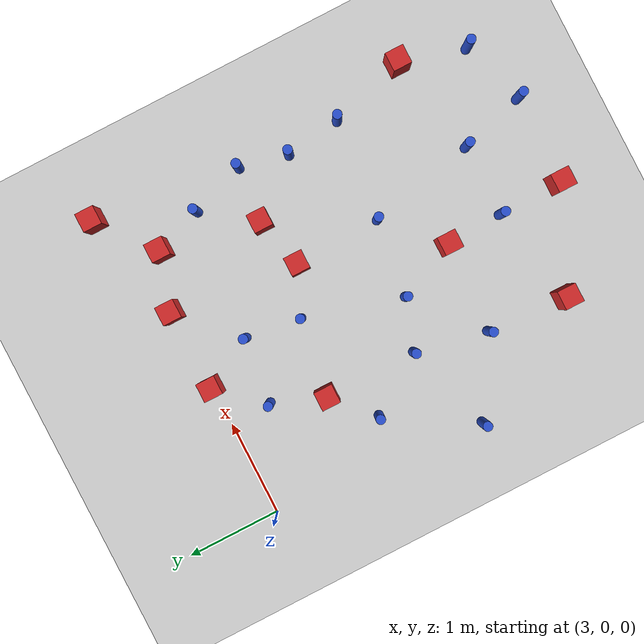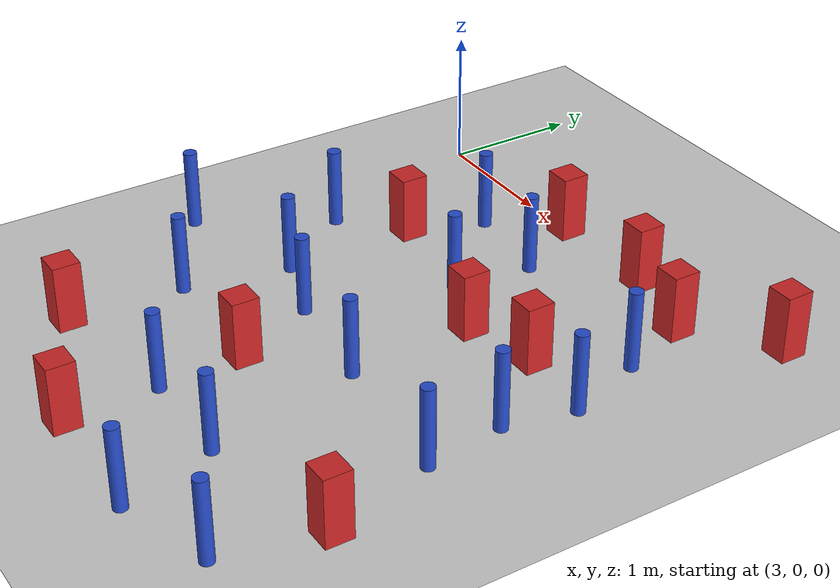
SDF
<sdf version="1.6">
 <world name="default">
  <model name="ground_plane">
   <static>1</static>
   <link name="link">
    <collision name="collision">
     <geometry><plane><normal>0 0 1</normal><size>100 100</size></plane></geometry>
     <surface><friction><ode><mu>100</mu><mu2>50</mu2></ode></friction></surface>
    </collision>
    <visual name="visual">
     <cast_shadows>0</cast_shadows>
     <geometry><plane><normal>0 0 1</normal><size>100 100</size></plane></geometry>
     <material>
      <ambient>1.0 1.0 1.0 1.0</ambient>
      <diffuse>0.8 0.8 0.8 1.0</diffuse>
      <specular>0.01 0.01 0.01 1.000000</specular>
     </material>
    </visual>
   </link>
  </model>
  <model name="square_post_obstacle0">
   <static>true</static>
   <pose>5.15000023231 -1.34860133683 8.22691968438e-08 7.2212513382e-06 -7.54495500217e-07 2.29674213826e-05</pose>
   <link name="link">
    <pose>0 0 0.25 0 -0 0</pose>
    <inertial>
     <mass>100</mass>
     <inertia>
      <ixx>0.166667</ixx>
      <ixy>0</ixy>
      <ixz>0</ixz>
      <iyy>0.166667</iyy>
      <iyz>0</iyz>
      <izz>0.166667</izz>
     </inertia>
    </inertial>
    <collision name="collision"><geometry><box><size>.2 .2 .5</size></box></geometry></collision>
    <visual name="visual">
     <geometry><box><size>.2 .2 .5</size></box></geometry>
     <material>
      <script><name>Gazebo/Red</name><uri>file://media/materials/scripts/gazebo.material</uri></script>
     </material>
    </visual>
   </link>
  </model>
  <model name="pole_obstacle0">
   <static>true</static>
   <pose>6.25939533136 -2.37629695557 2.88873142074e-08 -9.90536690245e-09 4.6021994898e-07 -1.20965994966e-07</pose>
   <link name="link">
    <pose>0 0 0.3 0 -0 0</pose>
    <inertial>
     <mass>1</mass>
     <inertia><ixx>0.145833</ixx><ixy>0</ixy><ixz>0</ixz><iyy>0.145833</iyy><iyz>0</iyz><izz>0.125</izz></inertia>
    </inertial>
    <collision name="collision">
     <geometry><cylinder><radius>0.05</radius><length>.6</length></cylinder></geometry>
    </collision>
    <visual name="visual">
     <geometry><cylinder><radius>0.05</radius><length>.6</length></cylinder></geometry>
     <material>
      <script><name>Gazebo/Blue</name><uri>file://media/materials/scripts/gazebo.material</uri></script>
     </material>
    </visual>
   </link>
  </model>
  <model name="square_post_obstacle17">
   <static>true</static>
   <pose>4.66868153729 -4.08071297045 8.22691968438e-08 7.2212513382e-06 -7.54495500217e-07 2.29674213826e-05</pose>
   <link name="link">
    <pose>0 0 0.25 0 -0 0</pose>
    <inertial>
     <mass>100</mass>
     <inertia>
      <ixx>0.166667</ixx>
      <ixy>0</ixy>
      <ixz>0</ixz>
      <iyy>0.166667</iyy>
      <iyz>0</iyz>
      <izz>0.166667</izz>
     </inertia>
    </inertial>
    <collision name="collision"><geometry><box><size>.2 .2 .5</size></box></geometry></collision>
    <visual name="visual">
     <geometry><box><size>.2 .2 .5</size></box></geometry>
     <material>
      <script><name>Gazebo/Red</name><uri>file://media/materials/scripts/gazebo.material</uri></script>
     </material>
    </visual>
   </link>
  </model>
  <model name="square_post_obstacle45">
   <static>true</static>
   <pose>5.90532125554 -0.179946224838 8.22691968438e-08 7.2212513382e-06 -7.54495500217e-07 2.29674213826e-05</pose>
   <link name="link">
    <pose>0 0 0.25 0 -0 0</pose>
    <inertial>
     <mass>100</mass>
     <inertia>
      <ixx>0.166667</ixx>
      <ixy>0</ixy>
      <ixz>0</ixz>
      <iyy>0.166667</iyy>
      <iyz>0</iyz>
      <izz>0.166667</izz>
     </inertia>
    </inertial>
    <collision name="collision"><geometry><box><size>.2 .2 .5</size></box></geometry></collision>
    <visual name="visual">
     <geometry><box><size>.2 .2 .5</size></box></geometry>
     <material>
      <script><name>Gazebo/Red</name><uri>file://media/materials/scripts/gazebo.material</uri></script>
     </material>
    </visual>
   </link>
  </model>
  <model name="pole_obstacle49">
   <static>true</static>
   <pose>6.17570449695 -1.78283865451 2.88873142074e-08 -9.90536689445e-09 4.60219948999e-07 -1.20965994956e-07</pose>
   <link name="link">
    <pose>0 0 0.3 0 -0 0</pose>
    <inertial>
     <mass>1</mass>
     <inertia><ixx>0.145833</ixx><ixy>0</ixy><ixz>0</ixz><iyy>0.145833</iyy><iyz>0</iyz><izz>0.125</izz></inertia>
    </inertial>
    <collision name="collision">
     <geometry><cylinder><radius>0.05</radius><length>.6</length></cylinder></geometry>
    </collision>
    <visual name="visual">
     <geometry><cylinder><radius>0.05</radius><length>.6</length></cylinder></geometry>
     <material>
      <script><name>Gazebo/Blue</name><uri>file://media/materials/scripts/gazebo.material</uri></script>
     </material>
    </visual>
   </link>
  </model>
  <model name="square_post_obstacle53">
   <static>true</static>
   <pose>5.69838929538 -1.21689586837 8.22691968438e-08 7.2212513382e-06 -7.54495500217e-07 2.29674213826e-05</pose>
   <link name="link">
    <pose>0 0 0.25 0 -0 0</pose>
    <inertial>
     <mass>100</mass>
     <inertia>
      <ixx>0.166667</ixx>
      <ixy>0</ixy>
      <ixz>0</ixz>
      <iyy>0.166667</iyy>
      <iyz>0</iyz>
      <izz>0.166667</izz>
     </inertia>
    </inertial>
    <collision name="collision"><geometry><box><size>.2 .2 .5</size></box></geometry></collision>
    <visual name="visual">
     <geometry><box><size>.2 .2 .5</size></box></geometry>
     <material>
      <script><name>Gazebo/Red</name><uri>file://media/materials/scripts/gazebo.material</uri></script>
     </material>
    </visual>
   </link>
  </model>
  <model name="pole_obstacle57">
   <static>true</static>
   <pose>3.81146176893 -1.98575136678 2.88873142074e-08 -9.90536689589e-09 4.60219948995e-07 -1.20965994957e-07</pose>
   <link name="link">
    <pose>0 0 0.3 0 -0 0</pose>
    <inertial>
     <mass>1</mass>
     <inertia><ixx>0.145833</ixx><ixy>0</ixy><ixz>0</ixz><iyy>0.145833</iyy><iyz>0</iyz><izz>0.125</izz></inertia>
    </inertial>
    <collision name="collision">
     <geometry><cylinder><radius>0.05</radius><length>.6</length></cylinder></geometry>
    </collision>
    <visual name="visual">
     <geometry><cylinder><radius>0.05</radius><length>.6</length></cylinder></geometry>
     <material>
      <script><name>Gazebo/Blue</name><uri>file://media/materials/scripts/gazebo.material</uri></script>
     </material>
    </visual>
   </link>
  </model>
  <model name="pole_obstacle61">
   <static>true</static>
   <pose>5.61702403845 -4.10796681776 2.88873142074e-08 -9.90536690842e-09 4.60219948965e-07 -1.20965994976e-07</pose>
   <link name="link">
    <pose>0 0 0.3 0 -0 0</pose>
    <inertial>
     <mass>1</mass>
     <inertia><ixx>0.145833</ixx><ixy>0</ixy><ixz>0</ixz><iyy>0.145833</iyy><iyz>0</iyz><izz>0.125</izz></inertia>
    </inertial>
    <collision name="collision">
     <geometry><cylinder><radius>0.05</radius><length>.6</length></cylinder></geometry>
    </collision>
    <visual name="visual">
     <geometry><cylinder><radius>0.05</radius><length>.6</length></cylinder></geometry>
     <material>
      <script><name>Gazebo/Blue</name><uri>file://media/materials/scripts/gazebo.material</uri></script>
     </material>
    </visual>
   </link>
  </model>
  <model name="pole_obstacle63">
   <static>true</static>
   <pose>3.39751263166 -1.37505485379 2.88873142074e-08 -9.90536689395e-09 4.60219949e-07 -1.20965994953e-07</pose>
   <link name="link">
    <pose>0 0 0.3 0 -0 0</pose>
    <inertial>
     <mass>1</mass>
     <inertia><ixx>0.145833</ixx><ixy>0</ixy><ixz>0</ixz><iyy>0.145833</iyy><iyz>0</iyz><izz>0.125</izz></inertia>
    </inertial>
    <collision name="collision">
     <geometry><cylinder><radius>0.05</radius><length>.6</length></cylinder></geometry>
    </collision>
    <visual name="visual">
     <geometry><cylinder><radius>0.05</radius><length>.6</length></cylinder></geometry>
     <material>
      <script><name>Gazebo/Blue</name><uri>file://media/materials/scripts/gazebo.material</uri></script>
     </material>
    </visual>
   </link>
  </model>
  <model name="pole_obstacle67">
   <static>true</static>
   <pose>4.64180337466 -1.12756635979 2.88873142074e-08 -9.90536689445e-09 4.60219948999e-07 -1.20965994956e-07</pose>
   <link name="link">
    <pose>0 0 0.3 0 -0 0</pose>
    <inertial>
     <mass>1</mass>
     <inertia><ixx>0.145833</ixx><ixy>0</ixy><ixz>0</ixz><iyy>0.145833</iyy><iyz>0</iyz><izz>0.125</izz></inertia>
    </inertial>
    <collision name="collision">
     <geometry><cylinder><radius>0.05</radius><length>.6</length></cylinder></geometry>
    </collision>
    <visual name="visual">
     <geometry><cylinder><radius>0.05</radius><length>.6</length></cylinder></geometry>
     <material>
      <script><name>Gazebo/Blue</name><uri>file://media/materials/scripts/gazebo.material</uri></script>
     </material>
    </visual>
   </link>
  </model>
  <model name="pole_obstacle70">
   <static>true</static>
   <pose>5.17681594677 -2.2753764297 2.88873142074e-08 -9.90536690245e-09 4.6021994898e-07 -1.20965994966e-07</pose>
   <link name="link">
    <pose>0 0 0.3 0 -0 0</pose>
    <inertial>
     <mass>1</mass>
     <inertia><ixx>0.145833</ixx><ixy>0</ixy><ixz>0</ixz><iyy>0.145833</iyy><iyz>0</iyz><izz>0.125</izz></inertia>
    </inertial>
    <collision name="collision">
     <geometry><cylinder><radius>0.05</radius><length>.6</length></cylinder></geometry>
    </collision>
    <visual name="visual">
     <geometry><cylinder><radius>0.05</radius><length>.6</length></cylinder></geometry>
     <material>
      <script><name>Gazebo/Blue</name><uri>file://media/materials/scripts/gazebo.material</uri></script>
     </material>
    </visual>
   </link>
  </model>
  <model name="pole_obstacle72">
   <static>true</static>
   <pose>5.41871702903 -3.41380591752 2.88873142074e-08 -9.90536690245e-09 4.6021994898e-07 -1.20965994966e-07</pose>
   <link name="link">
    <pose>0 0 0.3 0 -0 0</pose>
    <inertial>
     <mass>1</mass>
     <inertia><ixx>0.145833</ixx><ixy>0</ixy><ixz>0</ixz><iyy>0.145833</iyy><iyz>0</iyz><izz>0.125</izz></inertia>
    </inertial>
    <collision name="collision">
     <geometry><cylinder><radius>0.05</radius><length>.6</length></cylinder></geometry>
    </collision>
    <visual name="visual">
     <geometry><cylinder><radius>0.05</radius><length>.6</length></cylinder></geometry>
     <material>
      <script><name>Gazebo/Blue</name><uri>file://media/materials/scripts/gazebo.material</uri></script>
     </material>
    </visual>
   </link>
  </model>
  <model name="pole_obstacle94">
   <static>true</static>
   <pose>6.29122546616 -1.26858974739 2.88873142074e-08 -9.90536689445e-09 4.60219948999e-07 -1.20965994956e-07</pose>
   <link name="link">
    <pose>0 0 0.3 0 -0 0</pose>
    <inertial>
     <mass>1</mass>
     <inertia><ixx>0.145833</ixx><ixy>0</ixy><ixz>0</ixz><iyy>0.145833</iyy><iyz>0</iyz><izz>0.125</izz></inertia>
    </inertial>
    <collision name="collision">
     <geometry><cylinder><radius>0.05</radius><length>.6</length></cylinder></geometry>
    </collision>
    <visual name="visual">
     <geometry><cylinder><radius>0.05</radius><length>.6</length></cylinder></geometry>
     <material>
      <script><name>Gazebo/Blue</name><uri>file://media/materials/scripts/gazebo.material</uri></script>
     </material>
    </visual>
   </link>
  </model>
  <model name="pole_obstacle101">
   <static>true</static>
   <pose>3.65120811873 -2.75701727651 2.88873142074e-08 -9.90536690232e-09 4.6021994898e-07 -1.20965994968e-07</pose>
   <link name="link">
    <pose>0 0 0.3 0 -0 0</pose>
    <inertial>
     <mass>1</mass>
     <inertia><ixx>0.145833</ixx><ixy>0</ixy><ixz>0</ixz><iyy>0.145833</iyy><iyz>0</iyz><izz>0.125</izz></inertia>
    </inertial>
    <collision name="collision">
     <geometry><cylinder><radius>0.05</radius><length>.6</length></cylinder></geometry>
    </collision>
    <visual name="visual">
     <geometry><cylinder><radius>0.05</radius><length>.6</length></cylinder></geometry>
     <material>
      <script><name>Gazebo/Blue</name><uri>file://media/materials/scripts/gazebo.material</uri></script>
     </material>
    </visual>
   </link>
  </model>
  <model name="pole_obstacle109">
   <static>true</static>
   <pose>4.02232846109 -0.450491445531 2.88873142074e-08 -9.90536689318e-09 4.60219949002e-07 -1.20965994954e-07</pose>
   <link name="link">
    <pose>0 0 0.3 0 -0 0</pose>
    <inertial>
     <mass>1</mass>
     <inertia><ixx>0.145833</ixx><ixy>0</ixy><ixz>0</ixz><iyy>0.145833</iyy><iyz>0</iyz><izz>0.125</izz></inertia>
    </inertial>
    <collision name="collision">
     <geometry><cylinder><radius>0.05</radius><length>.6</length></cylinder></geometry>
    </collision>
    <visual name="visual">
     <geometry><cylinder><radius>0.05</radius><length>.6</length></cylinder></geometry>
     <material>
      <script><name>Gazebo/Blue</name><uri>file://media/materials/scripts/gazebo.material</uri></script>
     </material>
    </visual>
   </link>
  </model>
  <model name="pole_obstacle119">
   <static>true</static>
   <pose>6.31004379209 -3.88591678296 2.88873142074e-08 -9.90536690245e-09 4.6021994898e-07 -1.20965994966e-07</pose>
   <link name="link">
    <pose>0 0 0.3 0 -0 0</pose>
    <inertial>
     <mass>1</mass>
     <inertia><ixx>0.145833</ixx><ixy>0</ixy><ixz>0</ixz><iyy>0.145833</iyy><iyz>0</iyz><izz>0.125</izz></inertia>
    </inertial>
    <collision name="collision">
     <geometry><cylinder><radius>0.05</radius><length>.6</length></cylinder></geometry>
    </collision>
    <visual name="visual">
     <geometry><cylinder><radius>0.05</radius><length>.6</length></cylinder></geometry>
     <material>
      <script><name>Gazebo/Blue</name><uri>file://media/materials/scripts/gazebo.material</uri></script>
     </material>
    </visual>
   </link>
  </model>
  <model name="pole_obstacle123">
   <static>true</static>
   <pose>6.09028594662 -0.686654510738 2.88873142074e-08 -9.90536689837e-09 4.60219948989e-07 -1.2096599496e-07</pose>
   <link name="link">
    <pose>0 0 0.3 0 -0 0</pose>
    <inertial>
     <mass>1</mass>
     <inertia><ixx>0.145833</ixx><ixy>0</ixy><ixz>0</ixz><iyy>0.145833</iyy><iyz>0</iyz><izz>0.125</izz></inertia>
    </inertial>
    <collision name="collision">
     <geometry><cylinder><radius>0.05</radius><length>.6</length></cylinder></geometry>
    </collision>
    <visual name="visual">
     <geometry><cylinder><radius>0.05</radius><length>.6</length></cylinder></geometry>
     <material>
      <script><name>Gazebo/Blue</name><uri>file://media/materials/scripts/gazebo.material</uri></script>
     </material>
    </visual>
   </link>
  </model>
  <model name="pole_obstacle128">
   <static>true</static>
   <pose>2.85326195724 -2.27970721354 2.88873142074e-08 -9.90536690232e-09 4.6021994898e-07 -1.20965994968e-07</pose>
   <link name="link">
    <pose>0 0 0.3 0 -0 0</pose>
    <inertial>
     <mass>1</mass>
     <inertia><ixx>0.145833</ixx><ixy>0</ixy><ixz>0</ixz><iyy>0.145833</iyy><iyz>0</iyz><izz>0.125</izz></inertia>
    </inertial>
    <collision name="collision">
     <geometry><cylinder><radius>0.05</radius><length>.6</length></cylinder></geometry>
    </collision>
    <visual name="visual">
     <geometry><cylinder><radius>0.05</radius><length>.6</length></cylinder></geometry>
     <material>
      <script><name>Gazebo/Blue</name><uri>file://media/materials/scripts/gazebo.material</uri></script>
     </material>
    </visual>
   </link>
  </model>
  <model name="square_post_obstacle118">
   <static>true</static>
   <pose>4.43737677165 -0.00359077023074 8.22691968438e-08 7.2212513382e-06 -7.54495500217e-07 2.29674213826e-05</pose>
   <link name="link">
    <pose>0 0 0.25 0 -0 0</pose>
    <inertial>
     <mass>100</mass>
     <inertia>
      <ixx>0.166667</ixx>
      <ixy>0</ixy>
      <ixz>0</ixz>
      <iyy>0.166667</iyy>
      <iyz>0</iyz>
      <izz>0.166667</izz>
     </inertia>
    </inertial>
    <collision name="collision"><geometry><box><size>.2 .2 .5</size></box></geometry></collision>
    <visual name="visual">
     <geometry><box><size>.2 .2 .5</size></box></geometry>
     <material>
      <script><name>Gazebo/Red</name><uri>file://media/materials/scripts/gazebo.material</uri></script>
     </material>
    </visual>
   </link>
  </model>
  <model name="pole_obstacle137">
   <static>true</static>
   <pose>4.34989120041 -2.17046273704 2.88873142074e-08 -9.90536690245e-09 4.6021994898e-07 -1.20965994966e-07</pose>
   <link name="link">
    <pose>0 0 0.3 0 -0 0</pose>
    <inertial>
     <mass>1</mass>
     <inertia><ixx>0.145833</ixx><ixy>0</ixy><ixz>0</ixz><iyy>0.145833</iyy><iyz>0</iyz><izz>0.125</izz></inertia>
    </inertial>
    <collision name="collision">
     <geometry><cylinder><radius>0.05</radius><length>.6</length></cylinder></geometry>
    </collision>
    <visual name="visual">
     <geometry><cylinder><radius>0.05</radius><length>.6</length></cylinder></geometry>
     <material>
      <script><name>Gazebo/Blue</name><uri>file://media/materials/scripts/gazebo.material</uri></script>
     </material>
    </visual>
   </link>
  </model>
  <model name="square_post_obstacle147">
   <static>true</static>
   <pose>3.8242705099 -1.00178346201 8.22691968438e-08 7.2212513382e-06 -7.54495500217e-07 2.29674213826e-05</pose>
   <link name="link">
    <pose>0 0 0.25 0 -0 0</pose>
    <inertial>
     <mass>100</mass>
     <inertia>
      <ixx>0.166667</ixx>
      <ixy>0</ixy>
      <ixz>0</ixz>
      <iyy>0.166667</iyy>
      <iyz>0</iyz>
      <izz>0.166667</izz>
     </inertia>
    </inertial>
    <collision name="collision"><geometry><box><size>.2 .2 .5</size></box></geometry></collision>
    <visual name="visual">
     <geometry><box><size>.2 .2 .5</size></box></geometry>
     <material>
      <script><name>Gazebo/Red</name><uri>file://media/materials/scripts/gazebo.material</uri></script>
     </material>
    </visual>
   </link>
  </model>
  <model name="square_post_obstacle161">
   <static>true</static>
   <pose>3.60519646206 -3.60557014948 8.22691968438e-08 7.2212513382e-06 -7.54495500217e-07 2.29674213826e-05</pose>
   <link name="link">
    <pose>0 0 0.25 0 -0 0</pose>
    <inertial>
     <mass>100</mass>
     <inertia>
      <ixx>0.166667</ixx>
      <ixy>0</ixy>
      <ixz>0</ixz>
      <iyy>0.166667</iyy>
      <iyz>0</iyz>
      <izz>0.166667</izz>
     </inertia>
    </inertial>
    <collision name="collision"><geometry><box><size>.2 .2 .5</size></box></geometry></collision>
    <visual name="visual">
     <geometry><box><size>.2 .2 .5</size></box></geometry>
     <material>
      <script><name>Gazebo/Red</name><uri>file://media/materials/scripts/gazebo.material</uri></script>
     </material>
    </visual>
   </link>
  </model>
  <model name="square_post_obstacle165">
   <static>true</static>
   <pose>6.48856988828 -3.17743948394 8.22691968438e-08 7.2212513382e-06 -7.54495500217e-07 2.29674213826e-05</pose>
   <link name="link">
    <pose>0 0 0.25 0 -0 0</pose>
    <inertial>
     <mass>100</mass>
     <inertia>
      <ixx>0.166667</ixx>
      <ixy>0</ixy>
      <ixz>0</ixz>
      <iyy>0.166667</iyy>
      <iyz>0</iyz>
      <izz>0.166667</izz>
     </inertia>
    </inertial>
    <collision name="collision"><geometry><box><size>.2 .2 .5</size></box></geometry></collision>
    <visual name="visual">
     <geometry><box><size>.2 .2 .5</size></box></geometry>
     <material>
      <script><name>Gazebo/Red</name><uri>file://media/materials/scripts/gazebo.material</uri></script>
     </material>
    </visual>
   </link>
  </model>
  <model name="square_post_obstacle175">
   <static>true</static>
   <pose>6.48689835573 0.283483325857 8.22691968438e-08 7.2212513382e-06 -7.54495500217e-07 2.29674213826e-05</pose>
   <link name="link">
    <pose>0 0 0.25 0 -0 0</pose>
    <inertial>
     <mass>100</mass>
     <inertia>
      <ixx>0.166667</ixx>
      <ixy>0</ixy>
      <ixz>0</ixz>
      <iyy>0.166667</iyy>
      <iyz>0</iyz>
      <izz>0.166667</izz>
     </inertia>
    </inertial>
    <collision name="collision"><geometry><box><size>.2 .2 .5</size></box></geometry></collision>
    <visual name="visual">
     <geometry><box><size>.2 .2 .5</size></box></geometry>
     <material>
      <script><name>Gazebo/Red</name><uri>file://media/materials/scripts/gazebo.material</uri></script>
     </material>
    </visual>
   </link>
  </model>
  <model name="square_post_obstacle180">
   <static>true</static>
   <pose>4.62948046088 -2.79542058252 8.22691968438e-08 7.2212513382e-06 -7.54495500217e-07 2.29674213826e-05</pose>
   <link name="link">
    <pose>0 0 0.25 0 -0 0</pose>
    <inertial>
     <mass>100</mass>
     <inertia>
      <ixx>0.166667</ixx>
      <ixy>0</ixy>
      <ixz>0</ixz>
      <iyy>0.166667</iyy>
      <iyz>0</iyz>
      <izz>0.166667</izz>
     </inertia>
    </inertial>
    <collision name="collision"><geometry><box><size>.2 .2 .5</size></box></geometry></collision>
    <visual name="visual">
     <geometry><box><size>.2 .2 .5</size></box></geometry>
     <material>
      <script><name>Gazebo/Red</name><uri>file://media/materials/scripts/gazebo.material</uri></script>
     </material>
    </visual>
   </link>
  </model>
  <model name="pole_obstacle194">
   <static>true</static>
   <pose>4.72350440892 -0.53760846944 2.88873142074e-08 -9.90536689968e-09 4.60219948986e-07 -1.20965994963e-07</pose>
   <link name="link">
    <pose>0 0 0.3 0 -0 0</pose>
    <inertial>
     <mass>1</mass>
     <inertia><ixx>0.145833</ixx><ixy>0</ixy><ixz>0</ixz><iyy>0.145833</iyy><iyz>0</iyz><izz>0.125</izz></inertia>
    </inertial>
    <collision name="collision">
     <geometry><cylinder><radius>0.05</radius><length>.6</length></cylinder></geometry>
    </collision>
    <visual name="visual">
     <geometry><cylinder><radius>0.05</radius><length>.6</length></cylinder></geometry>
     <material>
      <script><name>Gazebo/Blue</name><uri>file://media/materials/scripts/gazebo.material</uri></script>
     </material>
    </visual>
   </link>
  </model>
  <model name="pole_obstacle204">
   <static>true</static>
   <pose>4.65015895647 -3.40922017678 2.88873142074e-08 -9.90536690245e-09 4.6021994898e-07 -1.20965994966e-07</pose>
   <link name="link">
    <pose>0 0 0.3 0 -0 0</pose>
    <inertial>
     <mass>1</mass>
     <inertia><ixx>0.145833</ixx><ixy>0</ixy><ixz>0</ixz><iyy>0.145833</iyy><iyz>0</iyz><izz>0.125</izz></inertia>
    </inertial>
    <collision name="collision">
     <geometry><cylinder><radius>0.05</radius><length>.6</length></cylinder></geometry>
    </collision>
    <visual name="visual">
     <geometry><cylinder><radius>0.05</radius><length>.6</length></cylinder></geometry>
     <material>
      <script><name>Gazebo/Blue</name><uri>file://media/materials/scripts/gazebo.material</uri></script>
     </material>
    </visual>
   </link>
  </model>
  <model name="square_post_obstacle221">
   <static>true</static>
   <pose>5.30066188616 0.00915135044073 8.22691968438e-08 7.2212513382e-06 -7.54495500217e-07 2.29674213826e-05</pose>
   <link name="link">
    <pose>0 0 0.25 0 -0 0</pose>
    <inertial>
     <mass>100</mass>
     <inertia>
      <ixx>0.166667</ixx>
      <ixy>0</ixy>
      <ixz>0</ixz>
      <iyy>0.166667</iyy>
      <iyz>0</iyz>
      <izz>0.166667</izz>
     </inertia>
    </inertial>
    <collision name="collision"><geometry><box><size>.2 .2 .5</size></box></geometry></collision>
    <visual name="visual">
     <geometry><box><size>.2 .2 .5</size></box></geometry>
     <material>
      <script><name>Gazebo/Red</name><uri>file://media/materials/scripts/gazebo.material</uri></script>
     </material>
    </visual>
   </link>
  </model>
 </world>
</sdf>
